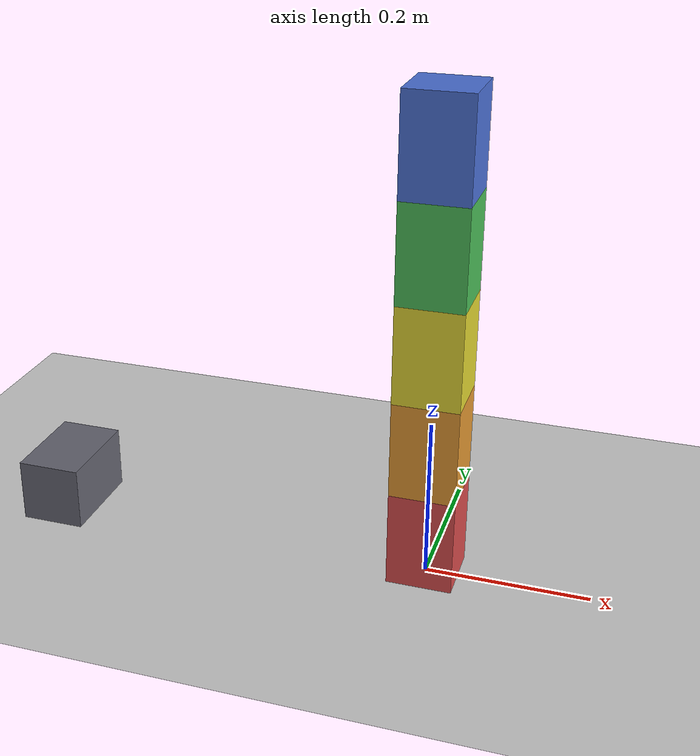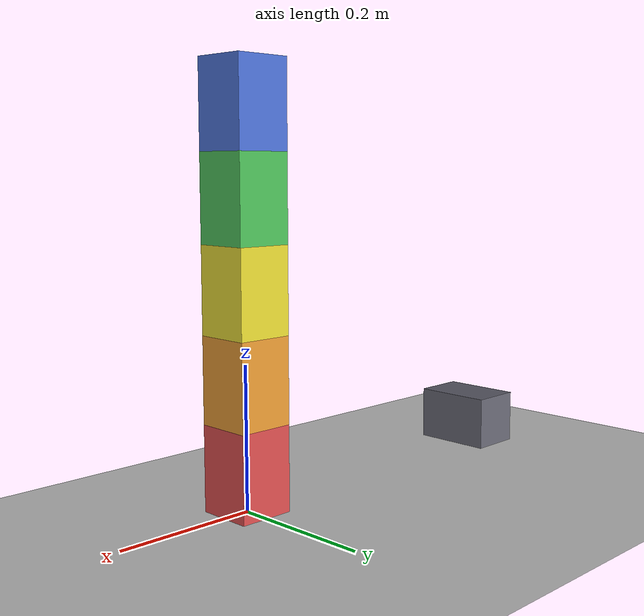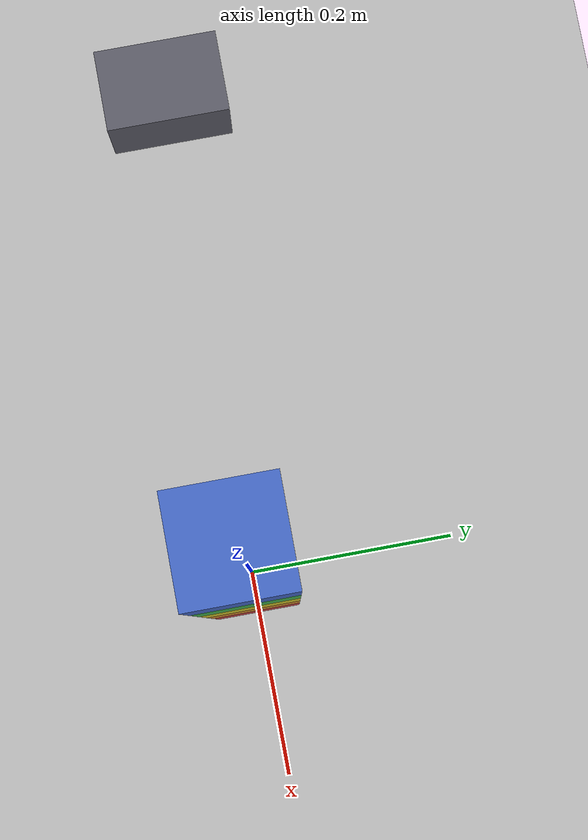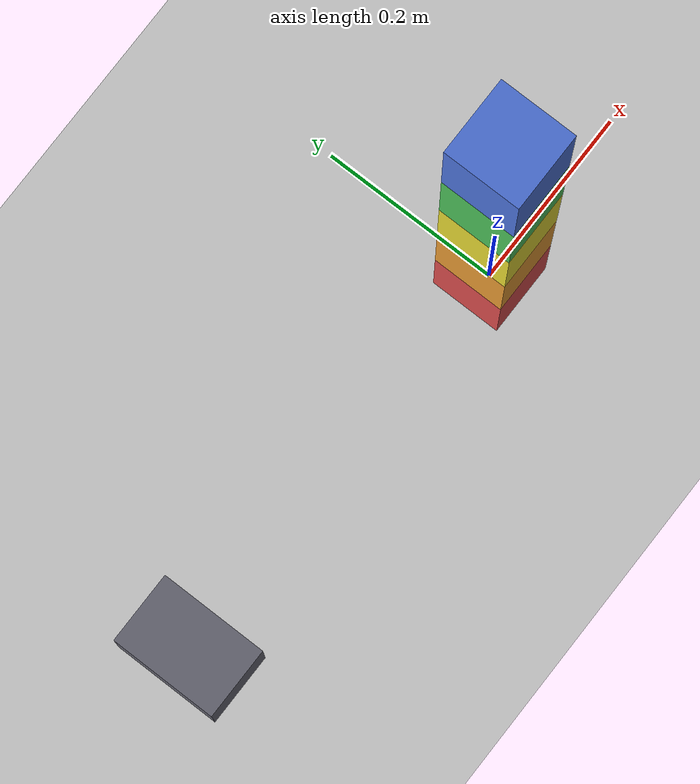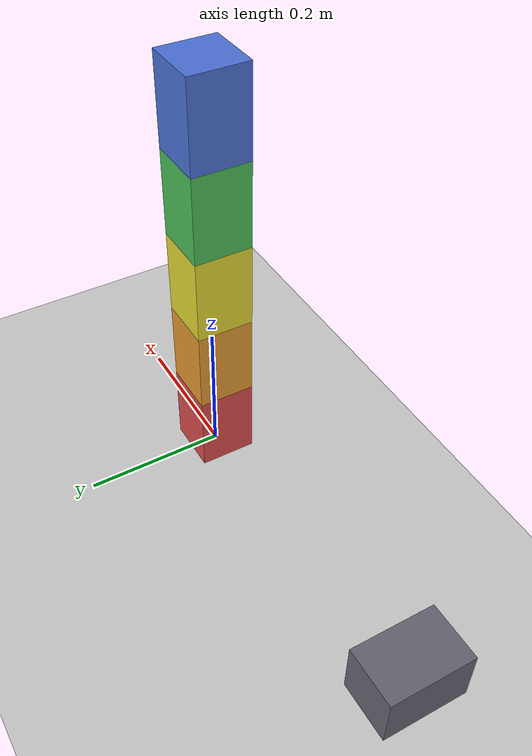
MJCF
<mujoco model="five_block_stack_topple">
  <option timestep="0.002"/>

  <visual>
    <global offwidth="1280" offheight="720"/>
  </visual>

  <worldbody>
    <light name="sun" pos="0 0 3" dir="0 0 -1" directional="true"/>
    <geom name="floor" type="plane" size="3 3 0.1" friction="0.3 0.005 0.0001" rgba="0.8 0.8 0.8 1"/>

    <body name="block1" pos="0 0 0.06">
      <freejoint name="block1_free"/>
      <geom name="block1_geom" type="box" size="0.04 0.04 0.06" density="600" friction="0.3 0.005 0.0001" rgba="0.85 0.3 0.3 1"/>
    </body>

    <body name="block2" pos="0 0 0.18">
      <freejoint name="block2_free"/>
      <geom name="block2_geom" type="box" size="0.04 0.04 0.06" density="600" friction="0.8 0.005 0.0001" rgba="0.9 0.6 0.2 1"/>
    </body>

    <body name="block3" pos="0 0 0.30">
      <freejoint name="block3_free"/>
      <geom name="block3_geom" type="box" size="0.04 0.04 0.06" density="600" friction="0.8 0.005 0.0001" rgba="0.9 0.85 0.2 1"/>
    </body>

    <body name="block4" pos="0 0 0.42">
      <freejoint name="block4_free"/>
      <geom name="block4_geom" type="box" size="0.04 0.04 0.06" density="600" friction="0.8 0.005 0.0001" rgba="0.3 0.75 0.35 1"/>
    </body>

    <body name="block5" pos="0 0 0.54">
      <freejoint name="block5_free"/>
      <geom name="block5_geom" type="box" size="0.04 0.04 0.06" density="600" friction="0.8 0.005 0.0001" rgba="0.3 0.45 0.85 1"/>
    </body>

    <body name="ram" pos="-0.48 0 0.05">
      <joint name="ram_slide" type="slide" axis="1 0 0" range="0 0.65" limited="true"/>
      <geom name="ram_geom" type="box" size="0.04 0.06 0.04" mass="3" friction="0.3 0.005 0.0001" rgba="0.4 0.4 0.45 1"/>
    </body>
  </worldbody>

  <actuator>
    <velocity name="ram_motor" joint="ram_slide" kv="300" ctrlrange="0 2" ctrllimited="true" forcerange="-60 60" forcelimited="true"/>
  </actuator>

  <keyframe>
    <key name="start" qpos="0 0 0.06 1 0 0 0  0 0 0.18 1 0 0 0  0 0 0.30 1 0 0 0  0 0 0.42 1 0 0 0  0 0 0.54 1 0 0 0  0" ctrl="1"/>
  </keyframe>
</mujoco>
